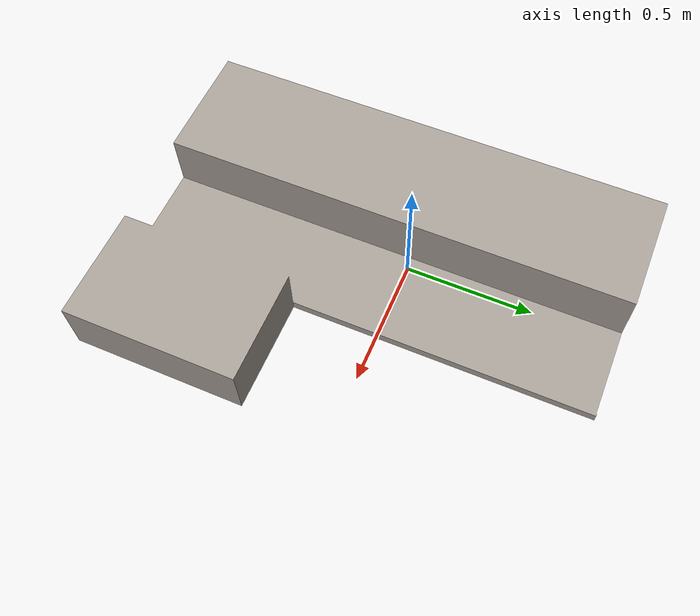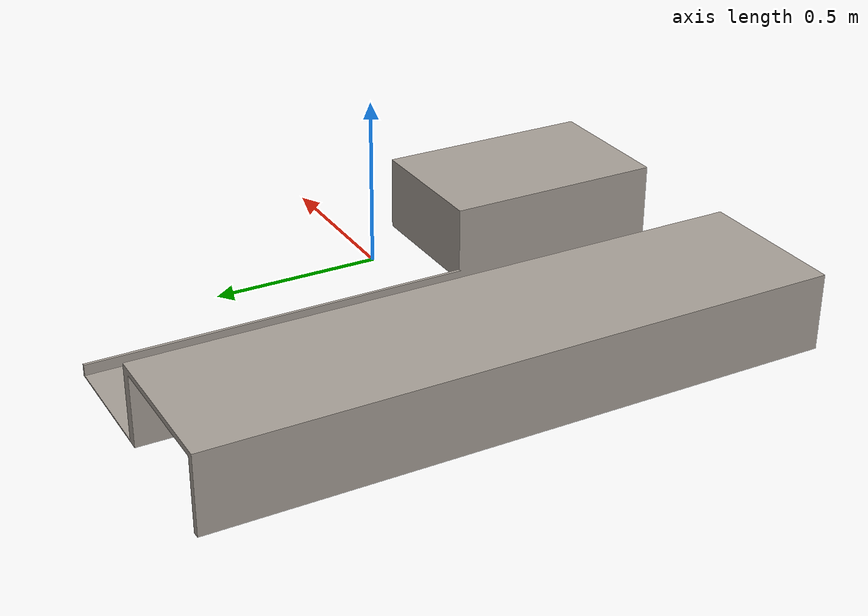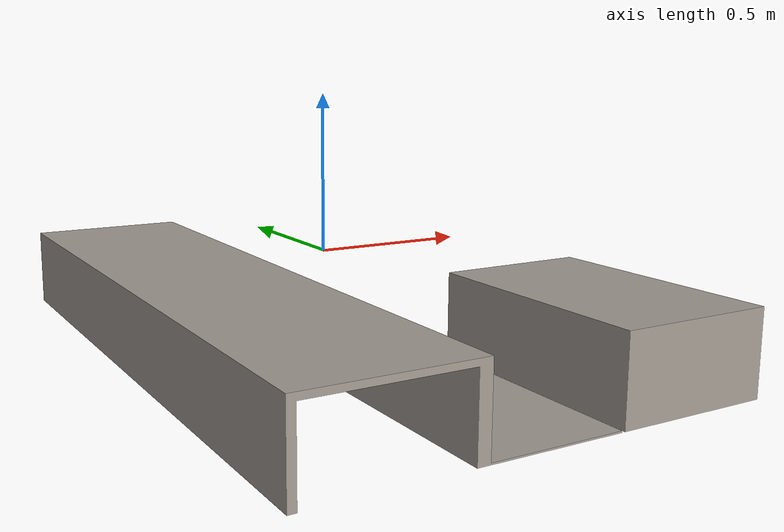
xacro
<?xml version="1.0" ?>
<robot
  name="model" xmlns:xacro="http://ros.org/wiki/xacro">
  <link
    name="base_link">
    <xacro:macro name="model_color">
    <visual>
    <material>
        <ambient>0.2 0.2 0.1 1</ambient>
        <diffuse>0.2 0.2 0.1 1</diffuse>
        <specular>0.1 0.1 0.1 1</specular>
        <emissive>0 0 0 0</emissive>
    </material>
    </visual>
    </xacro:macro>

    <inertial>
      <origin
        xyz="0.129000624683915 -0.130412915490147 0.539479690953805"
        rpy="0 0 0" />
      <mass
        value="1075.24542317365" />
      <inertia
        ixx="170.460424991106"
        ixy="2.78908689824427"
        ixz="0.840197852069231"
        iyy="197.513543789068"
        iyz="-0.192264005584331"
        izz="40.4445412063897" />
    </inertial>
    <visual>
      <origin
        xyz="0 0 0"
        rpy="0 0 0" />
      <geometry>
        <mesh
          filename="package://model/meshes/base_link.STL" />
      </geometry>
      <material
        name="">
        <color
          rgba="0.650980392156863 0.619607843137255 0.588235294117647 1" />
      </material>
    </visual>
    <collision>
      <origin
        xyz="0 0 0"
        rpy="0 0 0" />
      <geometry>
        <mesh
          filename="package://model/meshes/base_link.STL" />
      </geometry>
    </collision>
  </link>

  <gazebo reference="base_link">
    <xacro:model_color />
</gazebo>

</robot>
